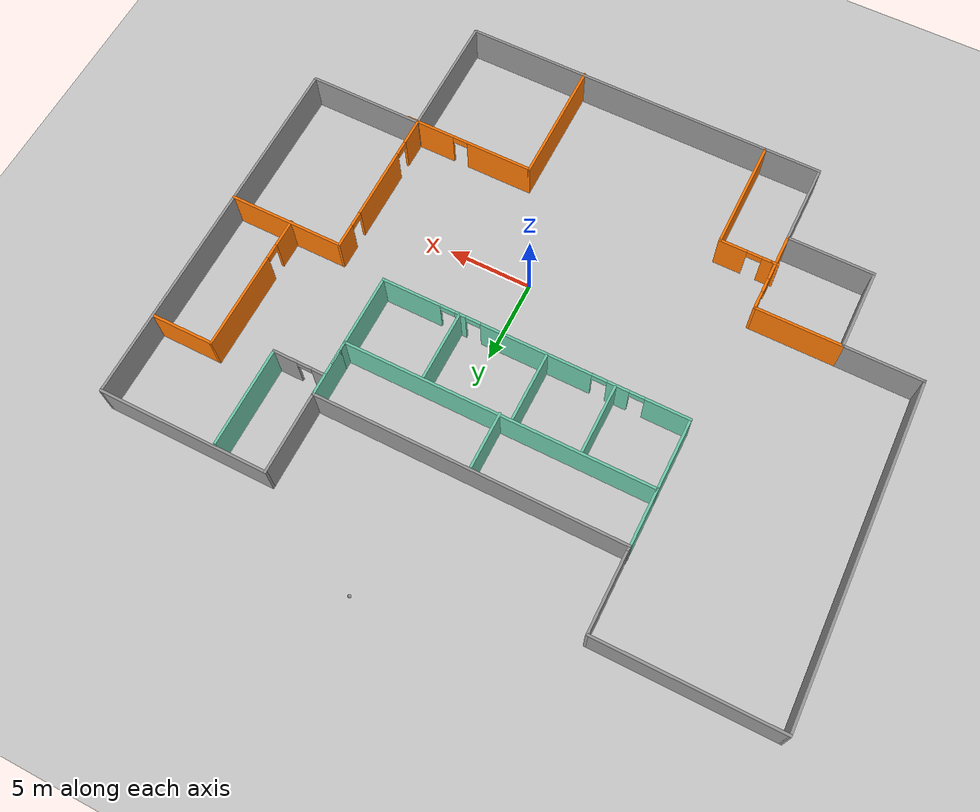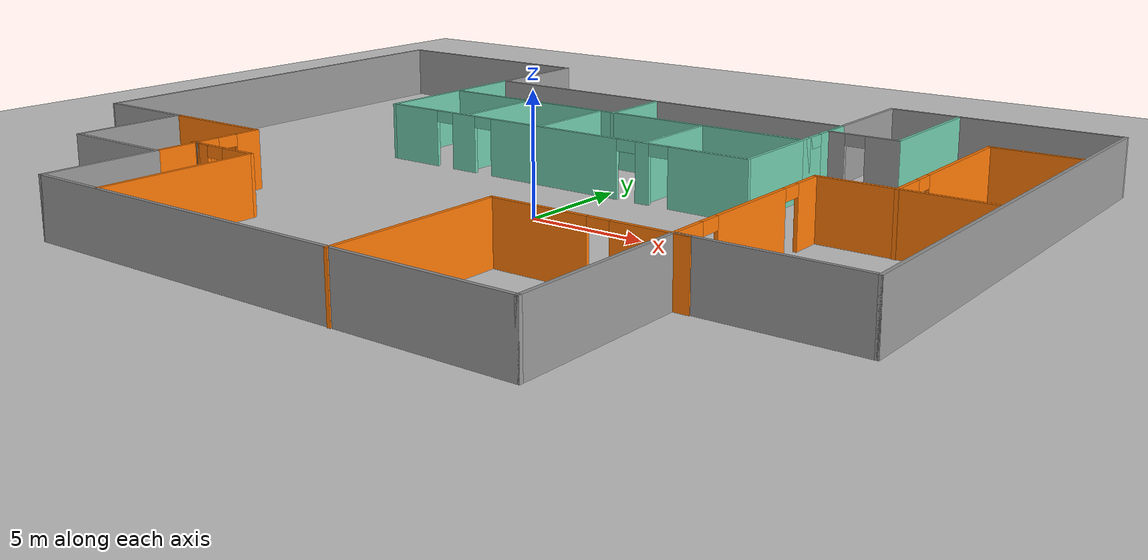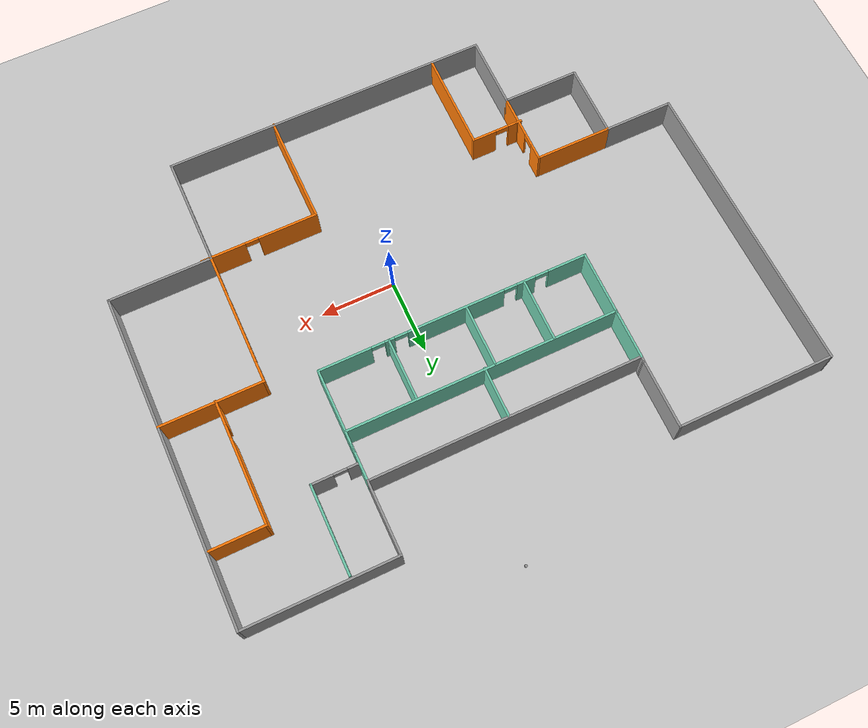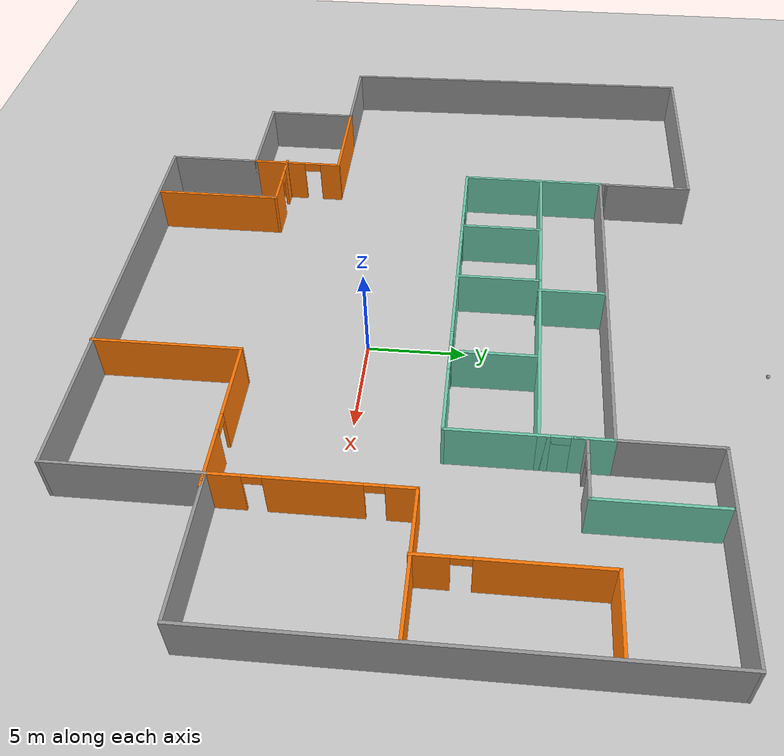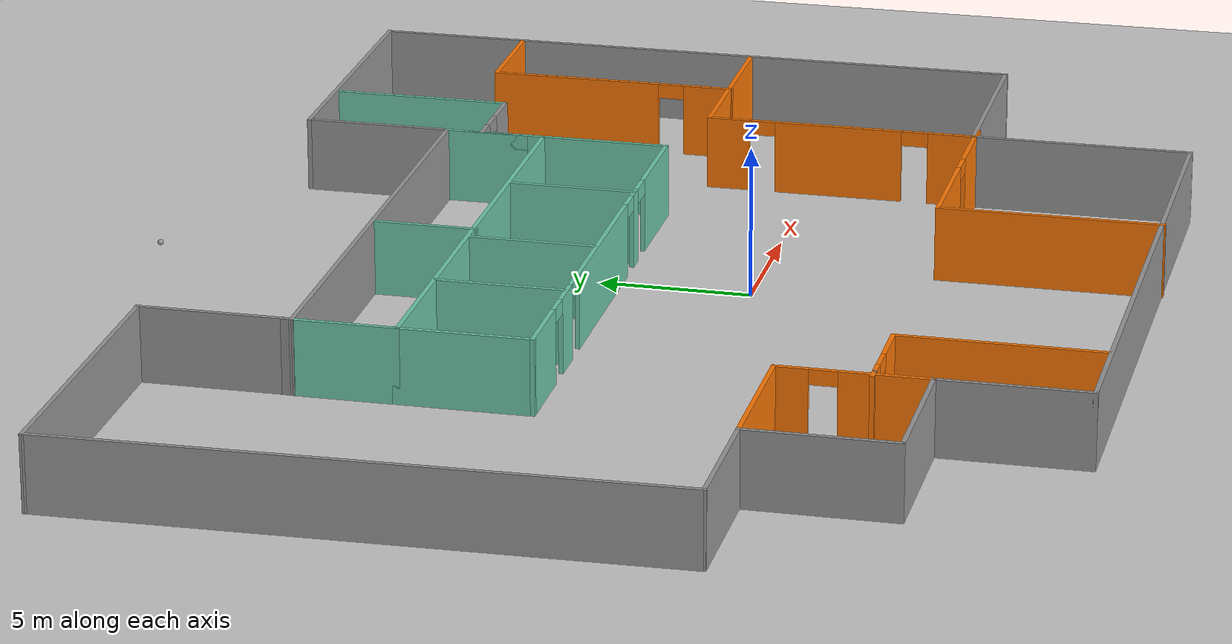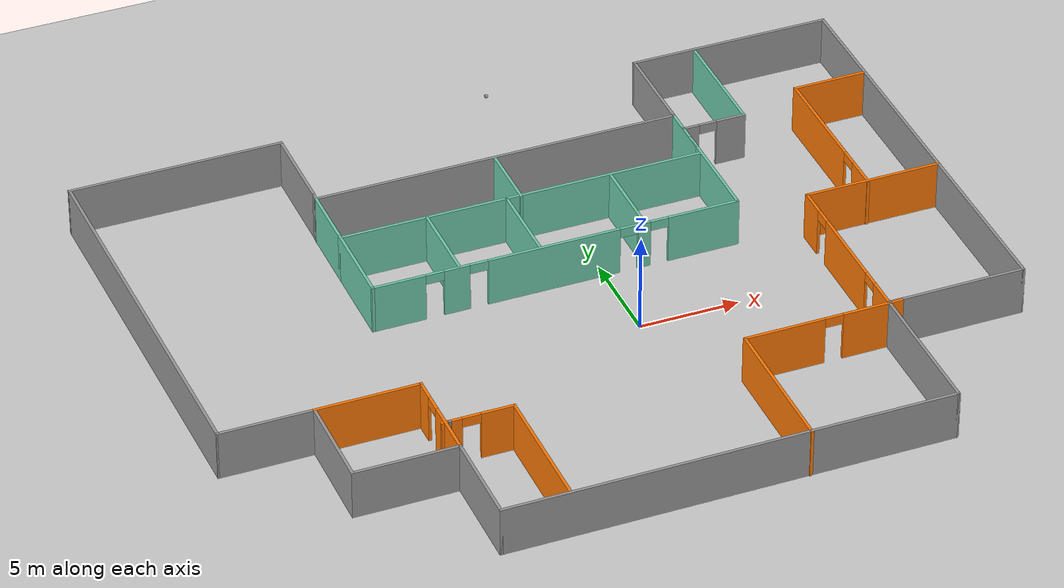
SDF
<sdf version="1.7">
 <world name="default">
  <model name="building_">
   <pose>-2.6285 1.9601 0 0 -0 0</pose>
   <link name="Wall_13">
    <collision name="Wall_13_Collision">
     <geometry><box><size>20.2535 0.15 2.5</size></box></geometry>
     <pose>0 0 1.25 0 -0 0</pose>
    </collision>
    <visual name="Wall_13_Visual">
     <pose>0 0 1.25 0 -0 0</pose>
     <geometry><box><size>20.2535 0.15 2.5</size></box></geometry>
     <material>
      <script><uri>file://media/materials/scripts/gazebo.material</uri><name>Gazebo/Grey</name></script>
      <ambient>1 1 1 1</ambient>
     </material>
     <meta><layer>0</layer></meta>
    </visual>
    <pose>-19.3243 4.87461 0 0 0 -1.55218</pose>
   </link>
   <link name="Wall_14">
    <collision name="Wall_14_Collision">
     <geometry><box><size>4.75 0.15 2.5</size></box></geometry>
     <pose>0 0 1.25 0 -0 0</pose>
    </collision>
    <visual name="Wall_14_Visual">
     <pose>0 0 1.25 0 -0 0</pose>
     <geometry><box><size>4.75 0.15 2.5</size></box></geometry>
     <material>
      <script><uri>file://media/materials/scripts/gazebo.material</uri><name>Gazebo/Grey</name></script>
      <ambient>1 1 1 1</ambient>
     </material>
     <meta><layer>0</layer></meta>
    </visual>
    <pose>-16.8372 -5.17539 0 0 -0 0</pose>
   </link>
   <link name="Wall_15">
    <collision name="Wall_15_Collision">
     <geometry><box><size>5 0.15 2.5</size></box></geometry>
     <pose>0 0 1.25 0 -0 0</pose>
    </collision>
    <visual name="Wall_15_Visual">
     <pose>0 0 1.25 0 -0 0</pose>
     <geometry><box><size>5 0.15 2.5</size></box></geometry>
     <material>
      <script><uri>file://media/materials/scripts/gazebo.material</uri><name>Gazebo/Grey</name></script>
      <ambient>1 1 1 1</ambient>
     </material>
     <meta><layer>0</layer></meta>
    </visual>
    <pose>-14.5372 -7.60039 0 0 0 -1.5708</pose>
   </link>
   <link name="Wall_16">
    <collision name="Wall_16_Collision">
     <geometry><box><size>5.25 0.15 2.5</size></box></geometry>
     <pose>0 0 1.25 0 -0 0</pose>
    </collision>
    <visual name="Wall_16_Visual">
     <pose>0 0 1.25 0 -0 0</pose>
     <geometry><box><size>5.25 0.15 2.5</size></box></geometry>
     <material>
      <script><uri>file://media/materials/scripts/gazebo.material</uri><name>Gazebo/Grey</name></script>
      <ambient>1 1 1 1</ambient>
     </material>
     <meta><layer>0</layer></meta>
    </visual>
    <pose>-11.9872 -10.0254 0 0 -0 0</pose>
   </link>
   <link name="Wall_17">
    <collision name="Wall_17_Collision">
     <geometry><box><size>5 0.15 2.5</size></box></geometry>
     <pose>0 0 1.25 0 -0 0</pose>
    </collision>
    <visual name="Wall_17_Visual">
     <pose>0 0 1.25 0 -0 0</pose>
     <geometry><box><size>5 0.15 2.5</size></box></geometry>
     <material>
      <script><uri>file://media/materials/scripts/gazebo.material</uri><name>Gazebo/Grey</name></script>
      <ambient>1 1 1 1</ambient>
     </material>
     <meta><layer>0</layer></meta>
    </visual>
    <pose>-9.43716 -12.4504 0 0 0 -1.5708</pose>
   </link>
   <link name="Wall_18">
    <collision name="Wall_18_Collision">
     <geometry><box><size>22.25 0.15 2.5</size></box></geometry>
     <pose>0 0 1.25 0 -0 0</pose>
    </collision>
    <visual name="Wall_18_Visual">
     <pose>0 0 1.25 0 -0 0</pose>
     <geometry><box><size>22.25 0.15 2.5</size></box></geometry>
     <material>
      <script><uri>file://media/materials/scripts/gazebo.material</uri><name>Gazebo/Grey</name></script>
      <ambient>1 1 1 1</ambient>
     </material>
     <meta><layer>0</layer></meta>
    </visual>
    <pose>1.61284 -14.8754 0 0 -0 0</pose>
   </link>
   <link name="Wall_19">
    <collision name="Wall_19_Collision">
     <geometry><box><size>7.5 0.15 2.5</size></box></geometry>
     <pose>0 0 1.25 0 -0 0</pose>
    </collision>
    <visual name="Wall_19_Visual">
     <pose>0 0 1.25 0 -0 0</pose>
     <geometry><box><size>7.5 0.15 2.5</size></box></geometry>
     <material>
      <script><uri>file://media/materials/scripts/gazebo.material</uri><name>Gazebo/Grey</name></script>
      <ambient>1 1 1 1</ambient>
     </material>
     <meta><layer>0</layer></meta>
    </visual>
    <pose>12.6628 -11.2004 0 0 -0 1.5708</pose>
   </link>
   <link name="Wall_20">
    <collision name="Wall_20_Collision">
     <geometry><box><size>7 0.15 2.5</size></box></geometry>
     <pose>0 0 1.25 0 -0 0</pose>
    </collision>
    <visual name="Wall_20_Visual">
     <pose>0 0 1.25 0 -0 0</pose>
     <geometry><box><size>7 0.15 2.5</size></box></geometry>
     <material>
      <script><uri>file://media/materials/scripts/gazebo.material</uri><name>Gazebo/Grey</name></script>
      <ambient>1 1 1 1</ambient>
     </material>
     <meta><layer>0</layer></meta>
    </visual>
    <pose>16.0878 -7.52539 0 0 -0 0</pose>
   </link>
   <link name="Wall_21">
    <collision name="Wall_21_Collision">
     <geometry><box><size>22.5 0.15 2.5</size></box></geometry>
     <pose>0 0 1.25 0 -0 0</pose>
    </collision>
    <visual name="Wall_21_Visual">
     <pose>0 0 1.25 0 -0 0</pose>
     <geometry><box><size>22.5 0.15 2.5</size></box></geometry>
     <material>
      <script><uri>file://media/materials/scripts/gazebo.material</uri><name>Gazebo/Grey</name></script>
      <ambient>1 1 1 1</ambient>
     </material>
     <meta><layer>0</layer></meta>
    </visual>
    <pose>19.5128 3.64961 0 0 -0 1.5708</pose>
   </link>
   <link name="Wall_22">
    <collision name="Wall_22_Collision">
     <geometry><box><size>10.25 0.15 2.5</size></box></geometry>
     <pose>0 0 1.25 0 -0 0</pose>
    </collision>
    <visual name="Wall_22_Visual">
     <pose>0 0 1.25 0 -0 0</pose>
     <geometry><box><size>10.25 0.15 2.5</size></box></geometry>
     <material>
      <script><uri>file://media/materials/scripts/gazebo.material</uri><name>Gazebo/Grey</name></script>
      <ambient>1 1 1 1</ambient>
     </material>
     <meta><layer>0</layer></meta>
    </visual>
    <pose>14.4628 14.8246 0 0 -0 3.14159</pose>
   </link>
   <link name="Wall_23">
    <collision name="Wall_23_Collision">
     <geometry><box><size>5 0.15 2.5</size></box></geometry>
     <pose>0 0 1.25 0 -0 0</pose>
    </collision>
    <visual name="Wall_23_Visual">
     <pose>0 0 1.25 0 -0 0</pose>
     <geometry><box><size>5 0.15 2.5</size></box></geometry>
     <material>
      <script><uri>file://media/materials/scripts/gazebo.material</uri><name>Gazebo/Grey</name></script>
      <ambient>1 1 1 1</ambient>
     </material>
     <meta><layer>0</layer></meta>
    </visual>
    <pose>9.41284 12.3996 0 0 0 -1.5708</pose>
   </link>
   <link name="Wall_24">
    <collision name="Wall_24_Collision">
     <geometry><box><size>18.5 0.15 2.5</size></box></geometry>
     <pose>0 0 1.25 0 -0 0</pose>
    </collision>
    <visual name="Wall_24_Visual">
     <pose>0 0 1.25 0 -0 0</pose>
     <geometry><box><size>18.5 0.15 2.5</size></box></geometry>
     <material>
      <script><uri>file://media/materials/scripts/gazebo.material</uri><name>Gazebo/Grey</name></script>
      <ambient>1 1 1 1</ambient>
     </material>
     <meta><layer>0</layer></meta>
    </visual>
    <pose>0.237843 9.97461 0 0 -0 3.14159</pose>
   </link>
   <link name="Wall_29">
    <collision name="Wall_29_Collision">
     <geometry><box><size>10.75 0.15 2.5</size></box></geometry>
     <pose>0 0 1.25 0 -0 0</pose>
    </collision>
    <visual name="Wall_29_Visual">
     <pose>0 0 1.25 0 -0 0</pose>
     <geometry><box><size>10.75 0.15 2.5</size></box></geometry>
     <material>
      <script><uri>file://media/materials/scripts/gazebo.material</uri><name>Gazebo/Grey</name></script>
      <ambient>1 1 1 1</ambient>
     </material>
     <meta><layer>0</layer></meta>
    </visual>
    <pose>-14.2115 14.9246 0 0 -0 0</pose>
   </link>
   <link name="Wall_30">
    <collision name="Wall_30_Collision">
     <geometry><box><size>4.75 0.15 2.5</size></box></geometry>
     <pose>0 0 1.25 0 -0 0</pose>
    </collision>
    <visual name="Wall_30_Visual">
     <pose>0 0 1.25 0 -0 0</pose>
     <geometry><box><size>4.75 0.15 2.5</size></box></geometry>
     <material>
      <script><uri>file://media/materials/scripts/gazebo.material</uri><name>Gazebo/Grey</name></script>
      <ambient>1 1 1 1</ambient>
     </material>
     <meta><layer>0</layer></meta>
    </visual>
    <pose>-8.91146 12.6246 0 0 0 -1.5708</pose>
   </link>
   <link name="Wall_31">
    <collision name="Wall_31_Collision">
     <geometry><box><size>0.5 0.15 2.5</size></box></geometry>
     <pose>0 0 1.25 0 -0 0</pose>
    </collision>
    <visual name="Wall_31_Visual">
     <pose>0 0 1.25 0 -0 0</pose>
     <geometry><box><size>0.5 0.15 2.5</size></box></geometry>
     <material>
      <script><uri>file://media/materials/scripts/gazebo.material</uri><name>Gazebo/Grey</name></script>
      <ambient>1 1 1 1</ambient>
     </material>
     <meta><layer>0</layer></meta>
    </visual>
    <pose>-8.92431 10.1496 0 0 0 -1.64408</pose>
   </link>
   <link name="Wall_33">
    <collision name="Wall_33_Collision">
     <geometry><box><size>3.5 0.15 2.5</size></box></geometry>
     <pose>0 0 1.25 0 -0 0</pose>
    </collision>
    <visual name="Wall_33_Visual">
     <pose>0 0 1.25 0 -0 0</pose>
     <geometry><box><size>3.5 0.15 2.5</size></box></geometry>
     <material>
      <script><uri>file://media/materials/scripts/gazebo.material</uri><name>Gazebo/Grey</name></script>
      <ambient>0.435294 0.796078 0.67451 1</ambient>
     </material>
     <meta><layer>0</layer></meta>
    </visual>
    <pose>-8.93716 8.29961 0 0 0 -1.5708</pose>
   </link>
   <link name="Wall_34">
    <collision name="Wall_34_Collision">
     <geometry><box><size>18.5 0.15 2.5</size></box></geometry>
     <pose>0 0 1.25 0 -0 0</pose>
    </collision>
    <visual name="Wall_34_Visual">
     <pose>0 0 1.25 0 -0 0</pose>
     <geometry><box><size>18.5 0.15 2.5</size></box></geometry>
     <material>
      <script><uri>file://media/materials/scripts/gazebo.material</uri><name>Gazebo/Grey</name></script>
      <ambient>0.435294 0.796078 0.67451 1</ambient>
     </material>
     <meta><layer>0</layer></meta>
    </visual>
    <pose>0.237843 6.62461 0 0 -0 0</pose>
   </link>
   <link name="Wall_35">
    <collision name="Wall_35_Collision">
     <geometry><box><size>3.5 0.15 2.5</size></box></geometry>
     <pose>0 0 1.25 0 -0 0</pose>
    </collision>
    <visual name="Wall_35_Visual">
     <pose>0 0 1.25 0 -0 0</pose>
     <geometry><box><size>3.5 0.15 2.5</size></box></geometry>
     <material>
      <script><uri>file://media/materials/scripts/gazebo.material</uri><name>Gazebo/Grey</name></script>
      <ambient>0.435294 0.796078 0.67451 1</ambient>
     </material>
     <meta><layer>0</layer></meta>
    </visual>
    <pose>9.41284 8.29961 0 0 -0 1.5708</pose>
   </link>
   <link name="Wall_36">
    <pose>9.41284 6.17461 0 0 0 -1.5708</pose>
    <visual name="Wall_36_Visual_0">
     <pose>-2.87314 0 1.25 0 -0 0</pose>
     <geometry><box><size>2.00371 0.15 2.5</size></box></geometry>
     <material>
      <script><uri>file://media/materials/scripts/gazebo.material</uri><name>Gazebo/Grey</name></script>
      <ambient>0.435294 0.796078 0.67451 1</ambient>
     </material>
     <meta><layer>0</layer></meta>
    </visual>
    <collision name="Wall_36_Collision_0">
     <geometry><box><size>2.00371 0.15 2.5</size></box></geometry>
     <pose>-2.87314 0 1.25 0 -0 0</pose>
    </collision>
    <visual name="Wall_36_Visual_1">
     <pose>1.45186 0 1.25 0 -0 0</pose>
     <geometry><box><size>4.84629 0.15 2.5</size></box></geometry>
     <material>
      <script><uri>file://media/materials/scripts/gazebo.material</uri><name>Gazebo/Grey</name></script>
      <ambient>0.435294 0.796078 0.67451 1</ambient>
     </material>
     <meta><layer>0</layer></meta>
    </visual>
    <collision name="Wall_36_Collision_1">
     <geometry><box><size>4.84629 0.15 2.5</size></box></geometry>
     <pose>1.45186 0 1.25 0 -0 0</pose>
    </collision>
    <visual name="Wall_36_Visual_2">
     <pose>-1.42129 0 2.25 0 -0 0</pose>
     <geometry><box><size>0.9 0.15 0.5</size></box></geometry>
     <material>
      <script><uri>file://media/materials/scripts/gazebo.material</uri><name>Gazebo/Grey</name></script>
      <ambient>0.435294 0.796078 0.67451 1</ambient>
     </material>
     <meta><layer>0</layer></meta>
    </visual>
    <collision name="Wall_36_Collision_2">
     <geometry><box><size>0.9 0.15 0.5</size></box></geometry>
     <pose>-1.42129 0 2.25 0 -0 0</pose>
    </collision>
   </link>
   <link name="Wall_37">
    <pose>0.237843 2.37461 0 0 -0 3.14159</pose>
    <visual name="Wall_37_Visual_0">
     <pose>-7.43929 0 1.25 0 -0 0</pose>
     <geometry><box><size>3.62143 0.15 2.5</size></box></geometry>
     <material>
      <script><uri>file://media/materials/scripts/gazebo.material</uri><name>Gazebo/Grey</name></script>
      <ambient>0.435294 0.796078 0.67451 1</ambient>
     </material>
     <meta><layer>0</layer></meta>
    </visual>
    <collision name="Wall_37_Collision_0">
     <geometry><box><size>3.62143 0.15 2.5</size></box></geometry>
     <pose>-7.43929 0 1.25 0 -0 0</pose>
    </collision>
    <visual name="Wall_37_Visual_1">
     <pose>-4.40279 0 1.25 0 -0 0</pose>
     <geometry><box><size>0.651573 0.15 2.5</size></box></geometry>
     <material>
      <script><uri>file://media/materials/scripts/gazebo.material</uri><name>Gazebo/Grey</name></script>
      <ambient>0.435294 0.796078 0.67451 1</ambient>
     </material>
     <meta><layer>0</layer></meta>
    </visual>
    <collision name="Wall_37_Collision_1">
     <geometry><box><size>0.651573 0.15 2.5</size></box></geometry>
     <pose>-4.40279 0 1.25 0 -0 0</pose>
    </collision>
    <visual name="Wall_37_Visual_2">
     <pose>0.144925 0 1.25 0 -0 0</pose>
     <geometry><box><size>6.64385 0.15 2.5</size></box></geometry>
     <material>
      <script><uri>file://media/materials/scripts/gazebo.material</uri><name>Gazebo/Grey</name></script>
      <ambient>0.435294 0.796078 0.67451 1</ambient>
     </material>
     <meta><layer>0</layer></meta>
    </visual>
    <collision name="Wall_37_Collision_2">
     <geometry><box><size>6.64385 0.15 2.5</size></box></geometry>
     <pose>0.144925 0 1.25 0 -0 0</pose>
    </collision>
    <visual name="Wall_37_Visual_3">
     <pose>5.01365 0 1.25 0 -0 0</pose>
     <geometry><box><size>1.2936 0.15 2.5</size></box></geometry>
     <material>
      <script><uri>file://media/materials/scripts/gazebo.material</uri><name>Gazebo/Grey</name></script>
      <ambient>0.435294 0.796078 0.67451 1</ambient>
     </material>
     <meta><layer>0</layer></meta>
    </visual>
    <collision name="Wall_37_Collision_3">
     <geometry><box><size>1.2936 0.15 2.5</size></box></geometry>
     <pose>5.01365 0 1.25 0 -0 0</pose>
    </collision>
    <visual name="Wall_37_Visual_4">
     <pose>7.90523 0 1.25 0 -0 0</pose>
     <geometry><box><size>2.68955 0.15 2.5</size></box></geometry>
     <material>
      <script><uri>file://media/materials/scripts/gazebo.material</uri><name>Gazebo/Grey</name></script>
      <ambient>0.435294 0.796078 0.67451 1</ambient>
     </material>
     <meta><layer>0</layer></meta>
    </visual>
    <collision name="Wall_37_Collision_4">
     <geometry><box><size>2.68955 0.15 2.5</size></box></geometry>
     <pose>7.90523 0 1.25 0 -0 0</pose>
    </collision>
    <visual name="Wall_37_Visual_5">
     <pose>-5.17857 0 2.25 0 -0 0</pose>
     <geometry><box><size>0.9 0.15 0.5</size></box></geometry>
     <material>
      <script><uri>file://media/materials/scripts/gazebo.material</uri><name>Gazebo/Grey</name></script>
      <ambient>0.435294 0.796078 0.67451 1</ambient>
     </material>
     <meta><layer>0</layer></meta>
    </visual>
    <collision name="Wall_37_Collision_5">
     <geometry><box><size>0.9 0.15 0.5</size></box></geometry>
     <pose>-5.17857 0 2.25 0 -0 0</pose>
    </collision>
    <visual name="Wall_37_Visual_6">
     <pose>-3.627 0 2.25 0 -0 0</pose>
     <geometry><box><size>0.9 0.15 0.5</size></box></geometry>
     <material>
      <script><uri>file://media/materials/scripts/gazebo.material</uri><name>Gazebo/Grey</name></script>
      <ambient>0.435294 0.796078 0.67451 1</ambient>
     </material>
     <meta><layer>0</layer></meta>
    </visual>
    <collision name="Wall_37_Collision_6">
     <geometry><box><size>0.9 0.15 0.5</size></box></geometry>
     <pose>-3.627 0 2.25 0 -0 0</pose>
    </collision>
    <visual name="Wall_37_Visual_7">
     <pose>3.91685 0 2.25 0 -0 0</pose>
     <geometry><box><size>0.9 0.15 0.5</size></box></geometry>
     <material>
      <script><uri>file://media/materials/scripts/gazebo.material</uri><name>Gazebo/Grey</name></script>
      <ambient>0.435294 0.796078 0.67451 1</ambient>
     </material>
     <meta><layer>0</layer></meta>
    </visual>
    <collision name="Wall_37_Collision_7">
     <geometry><box><size>0.9 0.15 0.5</size></box></geometry>
     <pose>3.91685 0 2.25 0 -0 0</pose>
    </collision>
    <visual name="Wall_37_Visual_8">
     <pose>6.11045 0 2.25 0 -0 0</pose>
     <geometry><box><size>0.9 0.15 0.5</size></box></geometry>
     <material>
      <script><uri>file://media/materials/scripts/gazebo.material</uri><name>Gazebo/Grey</name></script>
      <ambient>0.435294 0.796078 0.67451 1</ambient>
     </material>
     <meta><layer>0</layer></meta>
    </visual>
    <collision name="Wall_37_Collision_8">
     <geometry><box><size>0.9 0.15 0.5</size></box></geometry>
     <pose>6.11045 0 2.25 0 -0 0</pose>
    </collision>
   </link>
   <link name="Wall_38">
    <collision name="Wall_38_Collision">
     <geometry><box><size>4.5 0.15 2.5</size></box></geometry>
     <pose>0 0 1.25 0 -0 0</pose>
    </collision>
    <visual name="Wall_38_Visual">
     <pose>0 0 1.25 0 -0 0</pose>
     <geometry><box><size>4.5 0.15 2.5</size></box></geometry>
     <material>
      <script><uri>file://media/materials/scripts/gazebo.material</uri><name>Gazebo/Grey</name></script>
      <ambient>0.435294 0.796078 0.67451 1</ambient>
     </material>
     <meta><layer>0</layer></meta>
    </visual>
    <pose>-8.93716 4.54961 0 0 -0 1.5708</pose>
   </link>
   <link name="Wall_40">
    <collision name="Wall_40_Collision">
     <geometry><box><size>3.5 0.15 2.5</size></box></geometry>
     <pose>0 0 1.25 0 -0 0</pose>
    </collision>
    <visual name="Wall_40_Visual">
     <pose>0 0 1.25 0 -0 0</pose>
     <geometry><box><size>3.5 0.15 2.5</size></box></geometry>
     <material>
      <script><uri>file://media/materials/scripts/gazebo.material</uri><name>Gazebo/Grey</name></script>
      <ambient>0.435294 0.796078 0.67451 1</ambient>
     </material>
     <meta><layer>0</layer></meta>
    </visual>
    <pose>0.11744 8.24588 0 0 -0 1.5708</pose>
   </link>
   <link name="Wall_43">
    <collision name="Wall_43_Collision">
     <geometry><box><size>4.25 0.15 2.5</size></box></geometry>
     <pose>0 0 1.25 0 -0 0</pose>
    </collision>
    <visual name="Wall_43_Visual">
     <pose>0 0 1.25 0 -0 0</pose>
     <geometry><box><size>4.25 0.15 2.5</size></box></geometry>
     <material>
      <script><uri>file://media/materials/scripts/gazebo.material</uri><name>Gazebo/Grey</name></script>
      <ambient>0.435294 0.796078 0.67451 1</ambient>
     </material>
     <meta><layer>0</layer></meta>
    </visual>
    <pose>-0.590131 4.52088 0 0 0 -1.5708</pose>
   </link>
   <link name="Wall_45">
    <collision name="Wall_45_Collision">
     <geometry><box><size>4.25 0.15 2.5</size></box></geometry>
     <pose>0 0 1.25 0 -0 0</pose>
    </collision>
    <visual name="Wall_45_Visual">
     <pose>0 0 1.25 0 -0 0</pose>
     <geometry><box><size>4.25 0.15 2.5</size></box></geometry>
     <material>
      <script><uri>file://media/materials/scripts/gazebo.material</uri><name>Gazebo/Grey</name></script>
      <ambient>0.435294 0.796078 0.67451 1</ambient>
     </material>
     <meta><layer>0</layer></meta>
    </visual>
    <pose>-4.62328 4.52088 0 0 0 -1.5708</pose>
   </link>
   <link name="Wall_49">
    <pose>11.0074 8.76435 0 0 -0 0</pose>
    <visual name="Wall_49_Visual_0">
     <pose>-1.21135 0 1.25 0 -0 0</pose>
     <geometry><box><size>0.827291 0.15 2.5</size></box></geometry>
     <material>
      <script><uri>file://media/materials/scripts/gazebo.material</uri><name>Gazebo/Grey</name></script>
      <ambient>1 1 1 1</ambient>
     </material>
     <meta><layer>0</layer></meta>
    </visual>
    <collision name="Wall_49_Collision_0">
     <geometry><box><size>0.827291 0.15 2.5</size></box></geometry>
     <pose>-1.21135 0 1.25 0 -0 0</pose>
    </collision>
    <visual name="Wall_49_Visual_1">
     <pose>0.863645 0 1.25 0 -0 0</pose>
     <geometry><box><size>1.52271 0.15 2.5</size></box></geometry>
     <material>
      <script><uri>file://media/materials/scripts/gazebo.material</uri><name>Gazebo/Grey</name></script>
      <ambient>1 1 1 1</ambient>
     </material>
     <meta><layer>0</layer></meta>
    </visual>
    <collision name="Wall_49_Collision_1">
     <geometry><box><size>1.52271 0.15 2.5</size></box></geometry>
     <pose>0.863645 0 1.25 0 -0 0</pose>
    </collision>
    <visual name="Wall_49_Visual_2">
     <pose>-0.347709 0 2.25 0 -0 0</pose>
     <geometry><box><size>0.9 0.15 0.5</size></box></geometry>
     <material>
      <script><uri>file://media/materials/scripts/gazebo.material</uri><name>Gazebo/Grey</name></script>
      <ambient>1 1 1 1</ambient>
     </material>
     <meta><layer>0</layer></meta>
    </visual>
    <collision name="Wall_49_Collision_2">
     <geometry><box><size>0.9 0.15 0.5</size></box></geometry>
     <pose>-0.347709 0 2.25 0 -0 0</pose>
    </collision>
   </link>
   <link name="Wall_50">
    <collision name="Wall_50_Collision">
     <geometry><box><size>6 0.15 2.5</size></box></geometry>
     <pose>0 0 1.25 0 -0 0</pose>
    </collision>
    <visual name="Wall_50_Visual">
     <pose>0 0 1.25 0 -0 0</pose>
     <geometry><box><size>6 0.15 2.5</size></box></geometry>
     <material>
      <script><uri>file://media/materials/scripts/gazebo.material</uri><name>Gazebo/Grey</name></script>
      <ambient>0.435294 0.796078 0.67451 1</ambient>
     </material>
     <meta><layer>0</layer></meta>
    </visual>
    <pose>12.5574 11.6894 0 0 -0 1.5708</pose>
   </link>
   <link name="Wall_52">
    <collision name="Wall_52_Collision">
     <geometry><box><size>4.25 0.15 2.5</size></box></geometry>
     <pose>0 0 1.25 0 -0 0</pose>
    </collision>
    <visual name="Wall_52_Visual">
     <pose>0 0 1.25 0 -0 0</pose>
     <geometry><box><size>4.25 0.15 2.5</size></box></geometry>
     <material>
      <script><uri>file://media/materials/scripts/gazebo.material</uri><name>Gazebo/Grey</name></script>
      <ambient>0.435294 0.796078 0.67451 1</ambient>
     </material>
     <meta><layer>0</layer></meta>
    </visual>
    <pose>4.69144 4.42852 0 0 -0 1.5708</pose>
   </link>
   <link name="Wall_54">
    <collision name="Wall_54_Collision">
     <geometry><box><size>7.5 0.15 2.5</size></box></geometry>
     <pose>0 0 1.25 0 -0 0</pose>
    </collision>
    <visual name="Wall_54_Visual">
     <pose>0 0 1.25 0 -0 0</pose>
     <geometry><box><size>7.5 0.15 2.5</size></box></geometry>
     <material>
      <script><uri>file://media/materials/scripts/gazebo.material</uri><name>Gazebo/Grey</name></script>
      <ambient>0.996078 0.47451 0.0196078 1</ambient>
     </material>
     <meta><layer>0</layer></meta>
    </visual>
    <pose>5.42366 -11.251 0 0 -0 1.5708</pose>
   </link>
   <link name="Wall_55">
    <pose>9.34866 -7.576 0 0 -0 0</pose>
    <visual name="Wall_55_Visual_0">
     <pose>-1.96254 0 1.25 0 -0 0</pose>
     <geometry><box><size>4.07492 0.15 2.5</size></box></geometry>
     <material>
      <script><uri>file://media/materials/scripts/gazebo.material</uri><name>Gazebo/Grey</name></script>
      <ambient>0.996078 0.47451 0.0196078 1</ambient>
     </material>
     <meta><layer>0</layer></meta>
    </visual>
    <collision name="Wall_55_Collision_0">
     <geometry><box><size>4.07492 0.15 2.5</size></box></geometry>
     <pose>-1.96254 0 1.25 0 -0 0</pose>
    </collision>
    <visual name="Wall_55_Visual_1">
     <pose>2.48746 0 1.25 0 -0 0</pose>
     <geometry><box><size>3.02508 0.15 2.5</size></box></geometry>
     <material>
      <script><uri>file://media/materials/scripts/gazebo.material</uri><name>Gazebo/Grey</name></script>
      <ambient>0.996078 0.47451 0.0196078 1</ambient>
     </material>
     <meta><layer>0</layer></meta>
    </visual>
    <collision name="Wall_55_Collision_1">
     <geometry><box><size>3.02508 0.15 2.5</size></box></geometry>
     <pose>2.48746 0 1.25 0 -0 0</pose>
    </collision>
    <visual name="Wall_55_Visual_2">
     <pose>0.52492 0 2.25 0 -0 0</pose>
     <geometry><box><size>0.9 0.15 0.5</size></box></geometry>
     <material>
      <script><uri>file://media/materials/scripts/gazebo.material</uri><name>Gazebo/Grey</name></script>
      <ambient>0.996078 0.47451 0.0196078 1</ambient>
     </material>
     <meta><layer>0</layer></meta>
    </visual>
    <collision name="Wall_55_Collision_2">
     <geometry><box><size>0.9 0.15 0.5</size></box></geometry>
     <pose>0.52492 0 2.25 0 -0 0</pose>
    </collision>
   </link>
   <link name="Wall_59">
    <pose>12.6628 -2.97539 0 0 -0 1.5708</pose>
    <visual name="Wall_59_Visual_0">
     <pose>-3.81206 0 1.25 0 -0 0</pose>
     <geometry><box><size>1.62589 0.15 2.5</size></box></geometry>
     <material>
      <script><uri>file://media/materials/scripts/gazebo.material</uri><name>Gazebo/Grey</name></script>
      <ambient>0.996078 0.47451 0.0196078 1</ambient>
     </material>
     <meta><layer>0</layer></meta>
    </visual>
    <collision name="Wall_59_Collision_0">
     <geometry><box><size>1.62589 0.15 2.5</size></box></geometry>
     <pose>-3.81206 0 1.25 0 -0 0</pose>
    </collision>
    <visual name="Wall_59_Visual_1">
     <pose>0.080501 0 1.25 0 -0 0</pose>
     <geometry><box><size>4.35923 0.15 2.5</size></box></geometry>
     <material>
      <script><uri>file://media/materials/scripts/gazebo.material</uri><name>Gazebo/Grey</name></script>
      <ambient>0.996078 0.47451 0.0196078 1</ambient>
     </material>
     <meta><layer>0</layer></meta>
    </visual>
    <collision name="Wall_59_Collision_1">
     <geometry><box><size>4.35923 0.15 2.5</size></box></geometry>
     <pose>0.080501 0 1.25 0 -0 0</pose>
    </collision>
    <visual name="Wall_59_Visual_2">
     <pose>3.89256 0 1.25 0 -0 0</pose>
     <geometry><box><size>1.46489 0.15 2.5</size></box></geometry>
     <material>
      <script><uri>file://media/materials/scripts/gazebo.material</uri><name>Gazebo/Grey</name></script>
      <ambient>0.996078 0.47451 0.0196078 1</ambient>
     </material>
     <meta><layer>0</layer></meta>
    </visual>
    <collision name="Wall_59_Collision_2">
     <geometry><box><size>1.46489 0.15 2.5</size></box></geometry>
     <pose>3.89256 0 1.25 0 -0 0</pose>
    </collision>
    <visual name="Wall_59_Visual_3">
     <pose>-2.54911 0 2.25 0 -0 0</pose>
     <geometry><box><size>0.9 0.15 0.5</size></box></geometry>
     <material>
      <script><uri>file://media/materials/scripts/gazebo.material</uri><name>Gazebo/Grey</name></script>
      <ambient>0.996078 0.47451 0.0196078 1</ambient>
     </material>
     <meta><layer>0</layer></meta>
    </visual>
    <collision name="Wall_59_Collision_3">
     <geometry><box><size>0.9 0.15 0.5</size></box></geometry>
     <pose>-2.54911 0 2.25 0 -0 0</pose>
    </collision>
    <visual name="Wall_59_Visual_4">
     <pose>2.71011 0 2.25 0 -0 0</pose>
     <geometry><box><size>0.9 0.15 0.5</size></box></geometry>
     <material>
      <script><uri>file://media/materials/scripts/gazebo.material</uri><name>Gazebo/Grey</name></script>
      <ambient>0.996078 0.47451 0.0196078 1</ambient>
     </material>
     <meta><layer>0</layer></meta>
    </visual>
    <collision name="Wall_59_Collision_4">
     <geometry><box><size>0.9 0.15 0.5</size></box></geometry>
     <pose>2.71011 0 2.25 0 -0 0</pose>
    </collision>
   </link>
   <link name="Wall_60">
    <collision name="Wall_60_Collision">
     <geometry><box><size>7 0.15 2.5</size></box></geometry>
     <pose>0 0 1.25 0 -0 0</pose>
    </collision>
    <visual name="Wall_60_Visual">
     <pose>0 0 1.25 0 -0 0</pose>
     <geometry><box><size>7 0.15 2.5</size></box></geometry>
     <material>
      <script><uri>file://media/materials/scripts/gazebo.material</uri><name>Gazebo/Grey</name></script>
      <ambient>0.996078 0.47451 0.0196078 1</ambient>
     </material>
     <meta><layer>0</layer></meta>
    </visual>
    <pose>16.0878 1.57461 0 0 -0 0</pose>
   </link>
   <link name="Wall_62">
    <pose>15.7952 5.70315 0 0 -0 1.5708</pose>
    <visual name="Wall_62_Visual_0">
     <pose>-3.39234 0 1.25 0 -0 0</pose>
     <geometry><box><size>1.71531 0.15 2.5</size></box></geometry>
     <material>
      <script><uri>file://media/materials/scripts/gazebo.material</uri><name>Gazebo/Grey</name></script>
      <ambient>0.996078 0.47451 0.0196078 1</ambient>
     </material>
     <meta><layer>0</layer></meta>
    </visual>
    <collision name="Wall_62_Collision_0">
     <geometry><box><size>1.71531 0.15 2.5</size></box></geometry>
     <pose>-3.39234 0 1.25 0 -0 0</pose>
    </collision>
    <visual name="Wall_62_Visual_1">
     <pose>1.30766 0 1.25 0 -0 0</pose>
     <geometry><box><size>5.88469 0.15 2.5</size></box></geometry>
     <material>
      <script><uri>file://media/materials/scripts/gazebo.material</uri><name>Gazebo/Grey</name></script>
      <ambient>0.996078 0.47451 0.0196078 1</ambient>
     </material>
     <meta><layer>0</layer></meta>
    </visual>
    <collision name="Wall_62_Collision_1">
     <geometry><box><size>5.88469 0.15 2.5</size></box></geometry>
     <pose>1.30766 0 1.25 0 -0 0</pose>
    </collision>
    <visual name="Wall_62_Visual_2">
     <pose>-2.08468 0 2.25 0 -0 0</pose>
     <geometry><box><size>0.9 0.15 0.5</size></box></geometry>
     <material>
      <script><uri>file://media/materials/scripts/gazebo.material</uri><name>Gazebo/Grey</name></script>
      <ambient>0.996078 0.47451 0.0196078 1</ambient>
     </material>
     <meta><layer>0</layer></meta>
    </visual>
    <collision name="Wall_62_Collision_2">
     <geometry><box><size>0.9 0.15 0.5</size></box></geometry>
     <pose>-2.08468 0 2.25 0 -0 0</pose>
    </collision>
   </link>
   <link name="Wall_63">
    <collision name="Wall_63_Collision">
     <geometry><box><size>3.75 0.15 2.5</size></box></geometry>
     <pose>0 0 1.25 0 -0 0</pose>
    </collision>
    <visual name="Wall_63_Visual">
     <pose>0 0 1.25 0 -0 0</pose>
     <geometry><box><size>3.75 0.15 2.5</size></box></geometry>
     <material>
      <script><uri>file://media/materials/scripts/gazebo.material</uri><name>Gazebo/Grey</name></script>
      <ambient>0.996078 0.47451 0.0196078 1</ambient>
     </material>
     <meta><layer>0</layer></meta>
    </visual>
    <pose>17.5952 9.87815 0 0 -0 0</pose>
   </link>
   <link name="Wall_65">
    <collision name="Wall_65_Collision">
     <geometry><box><size>6.75 0.15 2.5</size></box></geometry>
     <pose>0 0 1.25 0 -0 0</pose>
    </collision>
    <visual name="Wall_65_Visual">
     <pose>0 0 1.25 0 -0 0</pose>
     <geometry><box><size>6.75 0.15 2.5</size></box></geometry>
     <material>
      <script><uri>file://media/materials/scripts/gazebo.material</uri><name>Gazebo/Grey</name></script>
      <ambient>0.996078 0.47451 0.0196078 1</ambient>
     </material>
     <meta><layer>0</layer></meta>
    </visual>
    <pose>-6.1281 -11.5016 0 0 -0 1.5708</pose>
   </link>
   <link name="Wall_66">
    <pose>-7.6781 -8.20158 0 0 -0 3.14159</pose>
    <visual name="Wall_66_Visual_0">
     <pose>-0.778331 0 1.25 0 -0 0</pose>
     <geometry><box><size>1.69334 0.15 2.5</size></box></geometry>
     <material>
      <script><uri>file://media/materials/scripts/gazebo.material</uri><name>Gazebo/Grey</name></script>
      <ambient>0.996078 0.47451 0.0196078 1</ambient>
     </material>
     <meta><layer>0</layer></meta>
    </visual>
    <collision name="Wall_66_Collision_0">
     <geometry><box><size>1.69334 0.15 2.5</size></box></geometry>
     <pose>-0.778331 0 1.25 0 -0 0</pose>
    </collision>
    <visual name="Wall_66_Visual_1">
     <pose>1.29667 0 1.25 0 -0 0</pose>
     <geometry><box><size>0.656662 0.15 2.5</size></box></geometry>
     <material>
      <script><uri>file://media/materials/scripts/gazebo.material</uri><name>Gazebo/Grey</name></script>
      <ambient>0.996078 0.47451 0.0196078 1</ambient>
     </material>
     <meta><layer>0</layer></meta>
    </visual>
    <collision name="Wall_66_Collision_1">
     <geometry><box><size>0.656662 0.15 2.5</size></box></geometry>
     <pose>1.29667 0 1.25 0 -0 0</pose>
    </collision>
    <visual name="Wall_66_Visual_2">
     <pose>0.518338 0 2.25 0 -0 0</pose>
     <geometry><box><size>0.9 0.15 0.5</size></box></geometry>
     <material>
      <script><uri>file://media/materials/scripts/gazebo.material</uri><name>Gazebo/Grey</name></script>
      <ambient>0.996078 0.47451 0.0196078 1</ambient>
     </material>
     <meta><layer>0</layer></meta>
    </visual>
    <collision name="Wall_66_Collision_2">
     <geometry><box><size>0.9 0.15 0.5</size></box></geometry>
     <pose>0.518338 0 2.25 0 -0 0</pose>
    </collision>
   </link>
   <link name="Wall_67">
    <collision name="Wall_67_Collision">
     <geometry><box><size>0.15 0.15 2.5</size></box></geometry>
     <pose>0 0 1.25 0 -0 0</pose>
    </collision>
    <visual name="Wall_67_Visual">
     <pose>0 0 1.25 0 -0 0</pose>
     <geometry><box><size>0.15 0.15 2.5</size></box></geometry>
     <material>
      <script><uri>file://media/materials/scripts/gazebo.material</uri><name>Gazebo/Grey</name></script>
      <ambient>1 1 1 1</ambient>
     </material>
     <meta><layer>0</layer></meta>
    </visual>
    <pose>-9.2281 -8.20158 0 0 -0 0</pose>
   </link>
   <link name="Wall_68">
    <collision name="Wall_68_Collision">
     <geometry><box><size>0.5 0.15 2.5</size></box></geometry>
     <pose>0 0 1.25 0 -0 0</pose>
    </collision>
    <visual name="Wall_68_Visual">
     <pose>0 0 1.25 0 -0 0</pose>
     <geometry><box><size>0.5 0.15 2.5</size></box></geometry>
     <material>
      <script><uri>file://media/materials/scripts/gazebo.material</uri><name>Gazebo/Grey</name></script>
      <ambient>0.996078 0.47451 0.0196078 1</ambient>
     </material>
     <meta><layer>0</layer></meta>
    </visual>
    <pose>-9.4031 -8.20158 0 0 -0 3.14159</pose>
   </link>
   <link name="Wall_70">
    <collision name="Wall_70_Collision">
     <geometry><box><size>0.15 0.15 2.5</size></box></geometry>
     <pose>0 0 1.25 0 -0 0</pose>
    </collision>
    <visual name="Wall_70_Visual">
     <pose>0 0 1.25 0 -0 0</pose>
     <geometry><box><size>0.15 0.15 2.5</size></box></geometry>
     <material>
      <script><uri>file://media/materials/scripts/gazebo.material</uri><name>Gazebo/Grey</name></script>
      <ambient>1 1 1 1</ambient>
     </material>
     <meta><layer>0</layer></meta>
    </visual>
    <pose>-9.43716 -10.0254 0 0 -0 0</pose>
   </link>
   <link name="Wall_71">
    <pose>-9.43716 -7.60039 0 0 -0 1.5708</pose>
    <visual name="Wall_71_Visual_0">
     <pose>-1.02013 0 1.25 0 -0 0</pose>
     <geometry><box><size>2.95974 0.15 2.5</size></box></geometry>
     <material>
      <script><uri>file://media/materials/scripts/gazebo.material</uri><name>Gazebo/Grey</name></script>
      <ambient>0.996078 0.47451 0.0196078 1</ambient>
     </material>
     <meta><layer>0</layer></meta>
    </visual>
    <collision name="Wall_71_Collision_0">
     <geometry><box><size>2.95974 0.15 2.5</size></box></geometry>
     <pose>-1.02013 0 1.25 0 -0 0</pose>
    </collision>
    <visual name="Wall_71_Visual_1">
     <pose>1.92987 0 1.25 0 -0 0</pose>
     <geometry><box><size>1.14026 0.15 2.5</size></box></geometry>
     <material>
      <script><uri>file://media/materials/scripts/gazebo.material</uri><name>Gazebo/Grey</name></script>
      <ambient>0.996078 0.47451 0.0196078 1</ambient>
     </material>
     <meta><layer>0</layer></meta>
    </visual>
    <collision name="Wall_71_Collision_1">
     <geometry><box><size>1.14026 0.15 2.5</size></box></geometry>
     <pose>1.92987 0 1.25 0 -0 0</pose>
    </collision>
    <visual name="Wall_71_Visual_2">
     <pose>0.909739 0 2.25 0 -0 0</pose>
     <geometry><box><size>0.9 0.15 0.5</size></box></geometry>
     <material>
      <script><uri>file://media/materials/scripts/gazebo.material</uri><name>Gazebo/Grey</name></script>
      <ambient>0.996078 0.47451 0.0196078 1</ambient>
     </material>
     <meta><layer>0</layer></meta>
    </visual>
    <collision name="Wall_71_Collision_2">
     <geometry><box><size>0.9 0.15 0.5</size></box></geometry>
     <pose>0.909739 0 2.25 0 -0 0</pose>
    </collision>
   </link>
   <link name="Wall_72">
    <collision name="Wall_72_Collision">
     <geometry><box><size>5.25 0.15 2.5</size></box></geometry>
     <pose>0 0 1.25 0 -0 0</pose>
    </collision>
    <visual name="Wall_72_Visual">
     <pose>0 0 1.25 0 -0 0</pose>
     <geometry><box><size>5.25 0.15 2.5</size></box></geometry>
     <material>
      <script><uri>file://media/materials/scripts/gazebo.material</uri><name>Gazebo/Grey</name></script>
      <ambient>0.996078 0.47451 0.0196078 1</ambient>
     </material>
     <meta><layer>0</layer></meta>
    </visual>
    <pose>-11.9872 -5.17539 0 0 -0 3.14159</pose>
   </link>
   <static>1</static>
  </model>
  <model name="ground_plane">
   <static>1</static>
   <link name="link">
    <collision name="collision">
     <geometry><plane><normal>0 0 1</normal><size>100 100</size></plane></geometry>
     <surface>
      <contact><collide_bitmask>65535</collide_bitmask></contact>
      <friction><ode><mu>100</mu><mu2>50</mu2></ode></friction>
     </surface>
    </collision>
    <visual name="visual">
     <cast_shadows>0</cast_shadows>
     <geometry><plane><normal>0 0 1</normal><size>100 100</size></plane></geometry>
     <material>
      <script><uri>file://media/materials/scripts/gazebo.material</uri><name>Gazebo/Grey</name></script>
     </material>
    </visual>
   </link>
  </model>
  <model name="my_ball">
   <link name="link">
    <inertial>
     <mass>1</mass>
     <inertia><ixx>0.1</ixx><ixy>0</ixy><ixz>0</ixz><iyy>0.1</iyy><iyz>0</iyz><izz>0.1</izz></inertia>
    </inertial>
    <visual name="visual">
     <geometry><sphere><radius>0.1</radius></sphere></geometry>
     <material>
      <script><name>Gazebo/Grey</name><uri>file://media/materials/scripts/gazebo.material</uri></script>
      <shader type="pixel"><normal_map>__default__</normal_map></shader>
      <ambient>1 1 1 1</ambient>
      <diffuse>1 1 1 1</diffuse>
      <specular>1 1 1 1</specular>
      <emissive>1 1 1 1</emissive>
     </material>
    </visual>
    <collision name="collision">
     <geometry><sphere><radius>0.1</radius></sphere></geometry>
     <surface>
      <friction>
       <ode><mu>1</mu><mu2>1</mu2><fdir1>0 0 0</fdir1><slip1>0</slip1><slip2>0</slip2></ode>
       <torsional>
        <coefficient>1</coefficient>
        <patch_radius>0</patch_radius>
        <surface_radius>0</surface_radius>
        <use_patch_radius>1</use_patch_radius>
        <ode><slip>0</slip></ode>
       </torsional>
      </friction>
      <bounce><restitution_coefficient>0</restitution_coefficient><threshold>1e+06</threshold></bounce>
      <contact>
       <collide_without_contact>0</collide_without_contact>
       <collide_without_contact_bitmask>1</collide_without_contact_bitmask>
       <collide_bitmask>1</collide_bitmask>
       <ode>
        <soft_cfm>0</soft_cfm>
        <soft_erp>0.2</soft_erp>
        <kp>1e+13</kp>
        <kd>1</kd>
        <max_vel>0.01</max_vel>
        <min_depth>0</min_depth>
       </ode>
       <bullet>
        <split_impulse>1</split_impulse>
        <split_impulse_penetration_threshold>-0.01</split_impulse_penetration_threshold>
        <soft_cfm>0</soft_cfm>
        <soft_erp>0.2</soft_erp>
        <kp>1e+13</kp>
        <kd>1</kd>
       </bullet>
      </contact>
     </surface>
    </collision>
   </link>
   <static>0</static>
   <pose>0.257228 20.0671 0.1 0 -0 0</pose>
  </model>
 </world>
</sdf>
